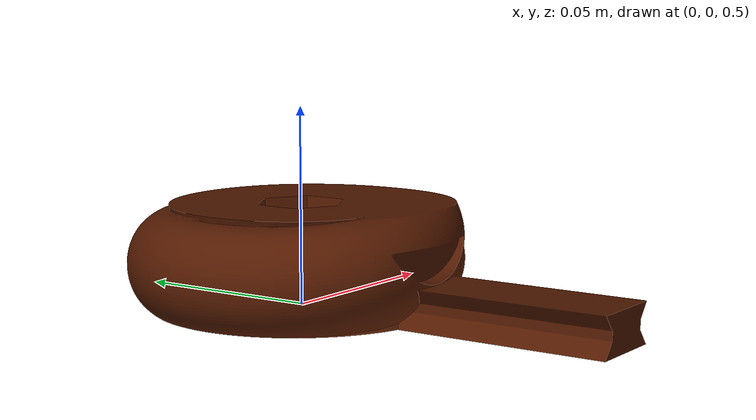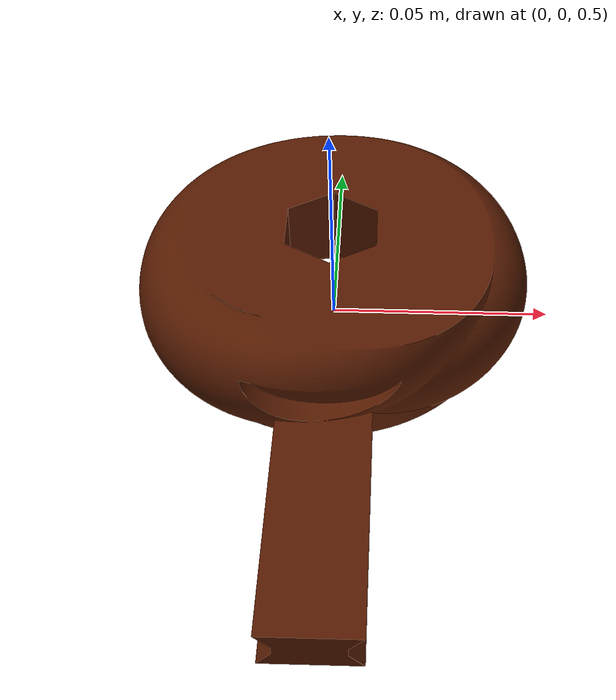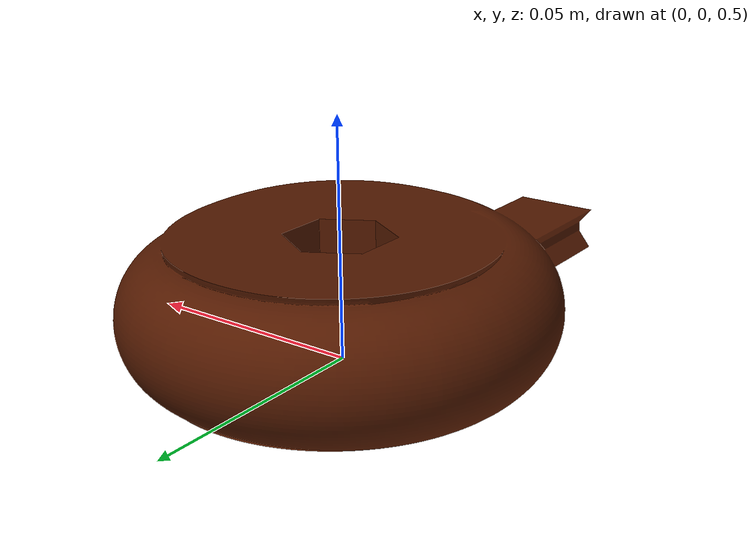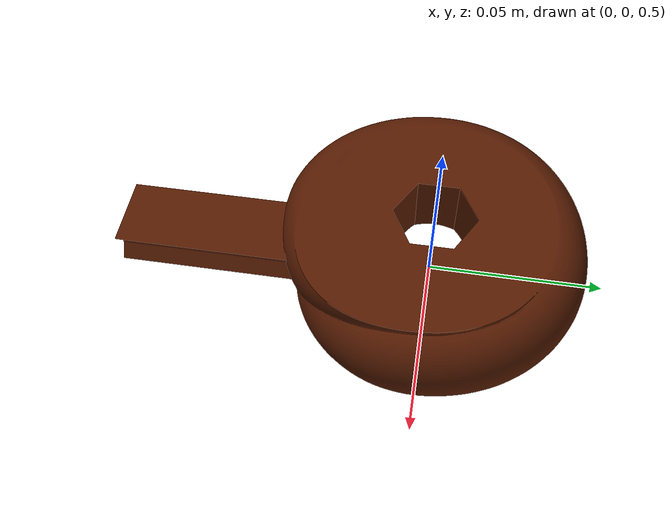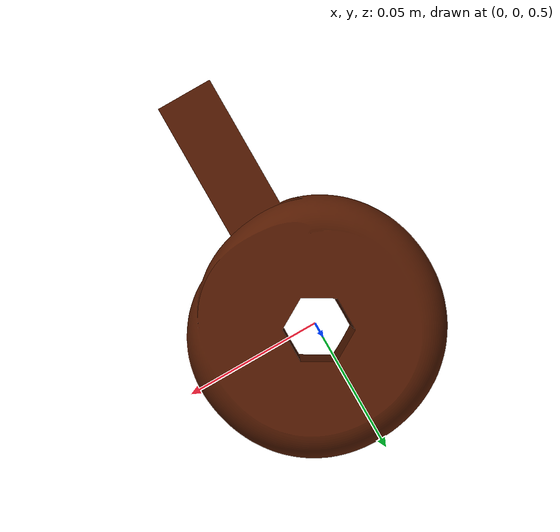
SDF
<?xml version='1.0'?>
<sdf version='1.6'>
<model name ='poop_lower'>
  <pose>0 0 0.5 0 0 0</pose>
    <link name='lower_link'>
      <inertial>
        <mass>0.165</mass>
        <inertia>
          <ixx>147.491791</ixx>
          <ixy>-4.949071</ixy>
          <ixz>-0.258245</ixz>
          <iyy>10.094223</iyy>
          <iyz>-0.634677</iyz>
          <izz>153.751083</izz>
        </inertia>
      </inertial>
      <collision name='lower_colision'>
        <geometry>
          <mesh>
            <uri>model://poop_lower/poop3.dae</uri>
          </mesh>
        </geometry>
      </collision>
      <visual name='lower_visual'>
        <geometry>
          <mesh>
            <uri>model://poop_lower/poop3.dae</uri>
          </mesh>
        </geometry>
      </visual>
    </link>
  </model>
</sdf>
